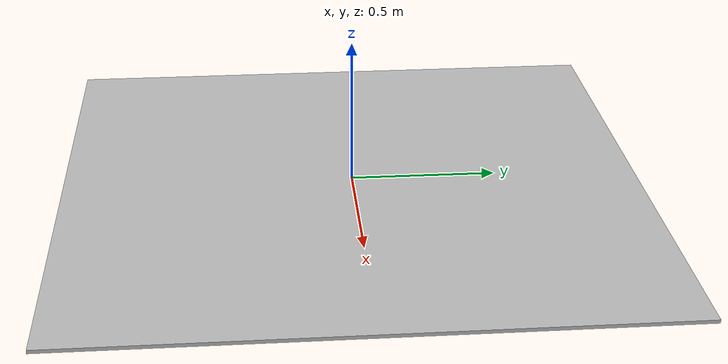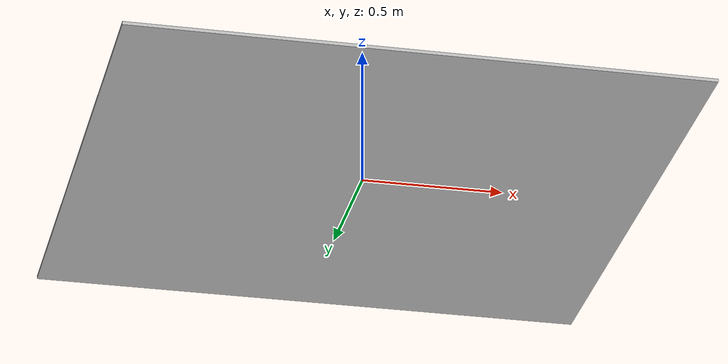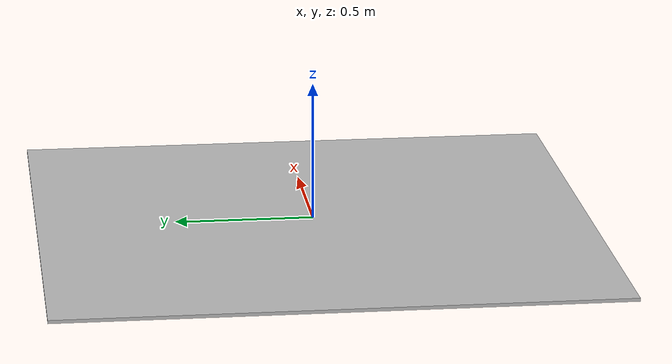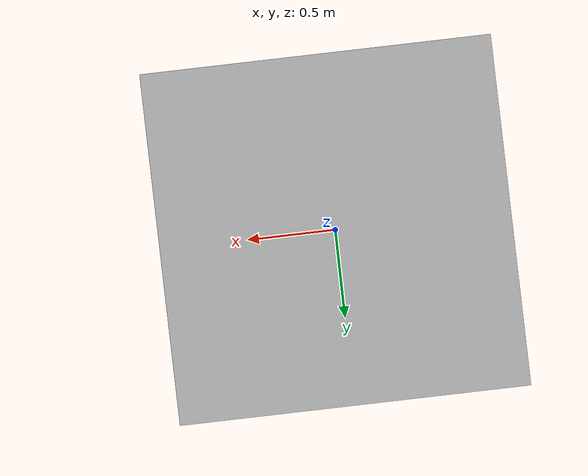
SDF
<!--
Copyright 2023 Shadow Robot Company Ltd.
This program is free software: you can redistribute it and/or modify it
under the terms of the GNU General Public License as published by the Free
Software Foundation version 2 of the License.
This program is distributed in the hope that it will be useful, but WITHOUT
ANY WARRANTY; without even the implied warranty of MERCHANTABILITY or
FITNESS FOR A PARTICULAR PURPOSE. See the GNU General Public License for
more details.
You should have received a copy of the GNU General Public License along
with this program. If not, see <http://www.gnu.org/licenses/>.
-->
<?xml version="1.0" ?>

<sdf version="1.4">
  <model name="bimanual_combined_table">
    <static>true</static>
    <link name="link">
      <inertial>
        <mass>20</mass>
      </inertial>
      <collision name="collision">
        <pose>0.0 0.0 0.0 0 0.0 0.0</pose>
        <geometry>
          <mesh>
            <uri>model://bimanual_combined_table/meshes/bimanual_combined_table.stl</uri>
          </mesh>
        </geometry>
      </collision>
      <visual name="visual">
        <pose>0.0 0.0 0.0 0 0.0 0.0</pose>
        <geometry>
          <mesh>
            <uri>model://bimanual_combined_table/meshes/bimanual_combined_table.stl</uri>
          </mesh>
        </geometry>
      </visual>
    </link>
  </model>
</sdf>
